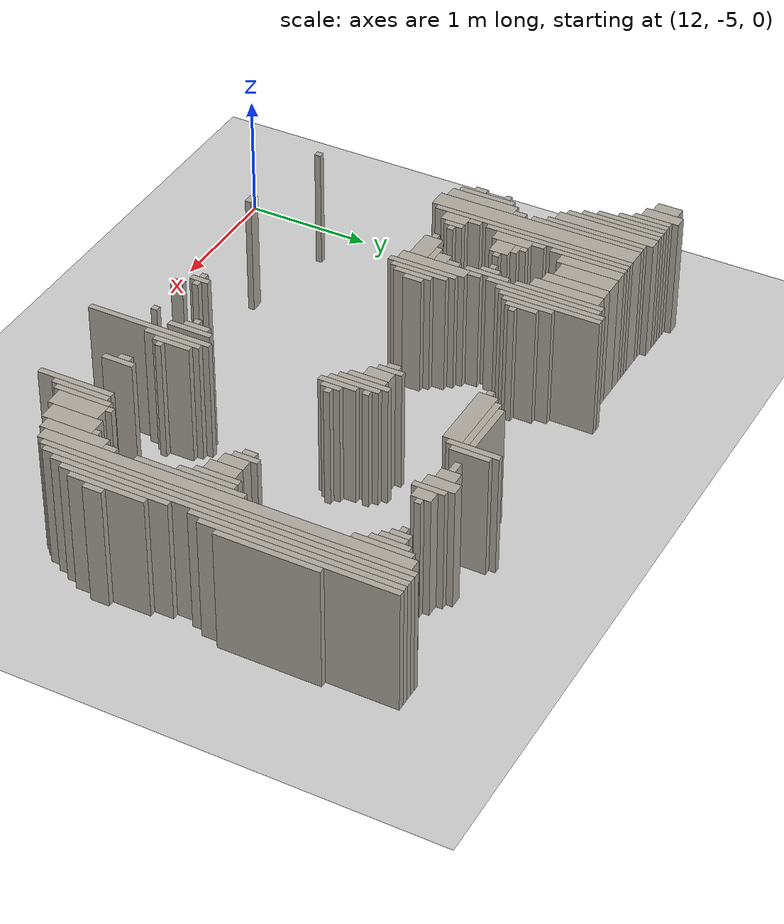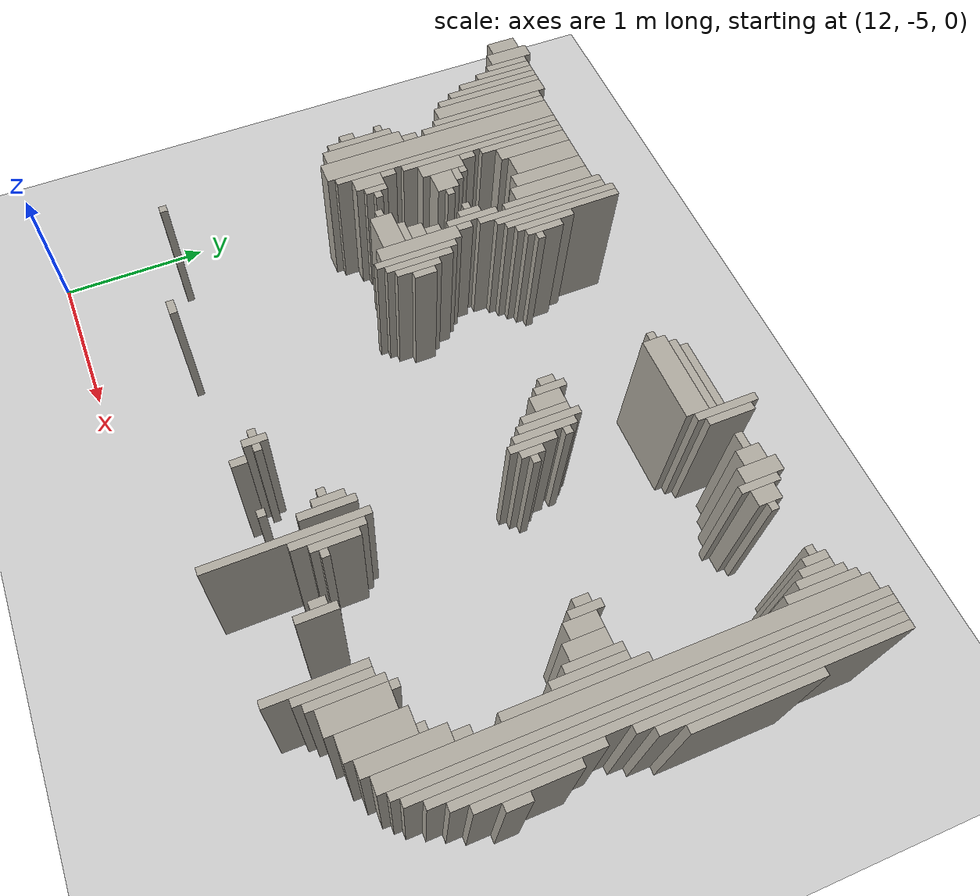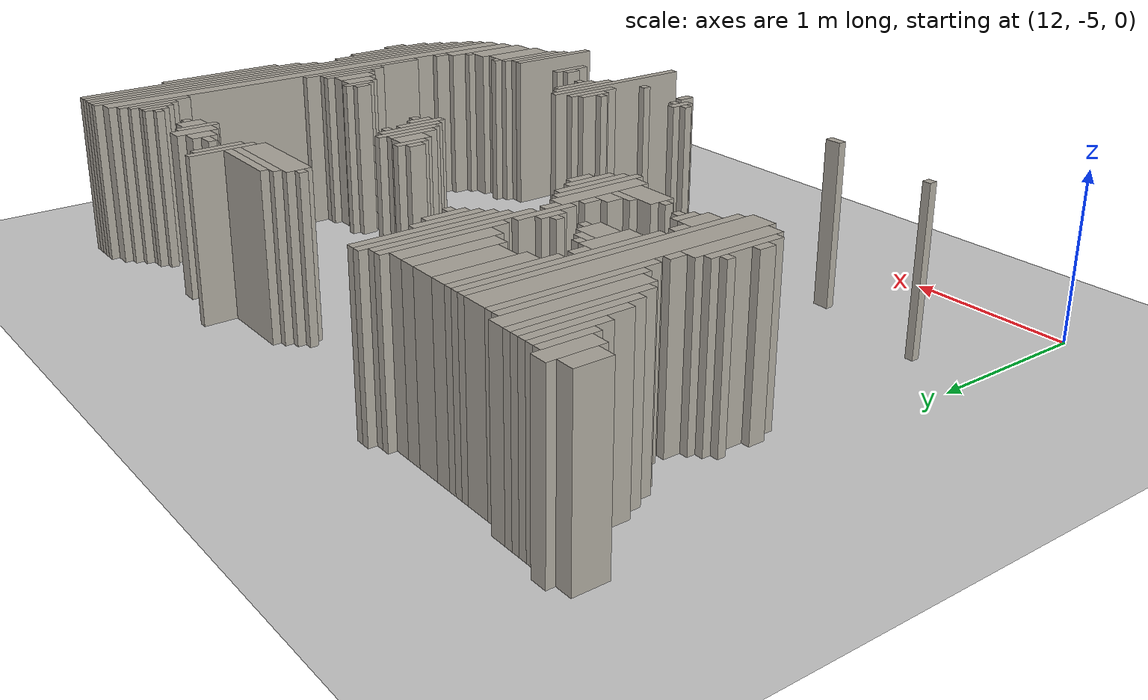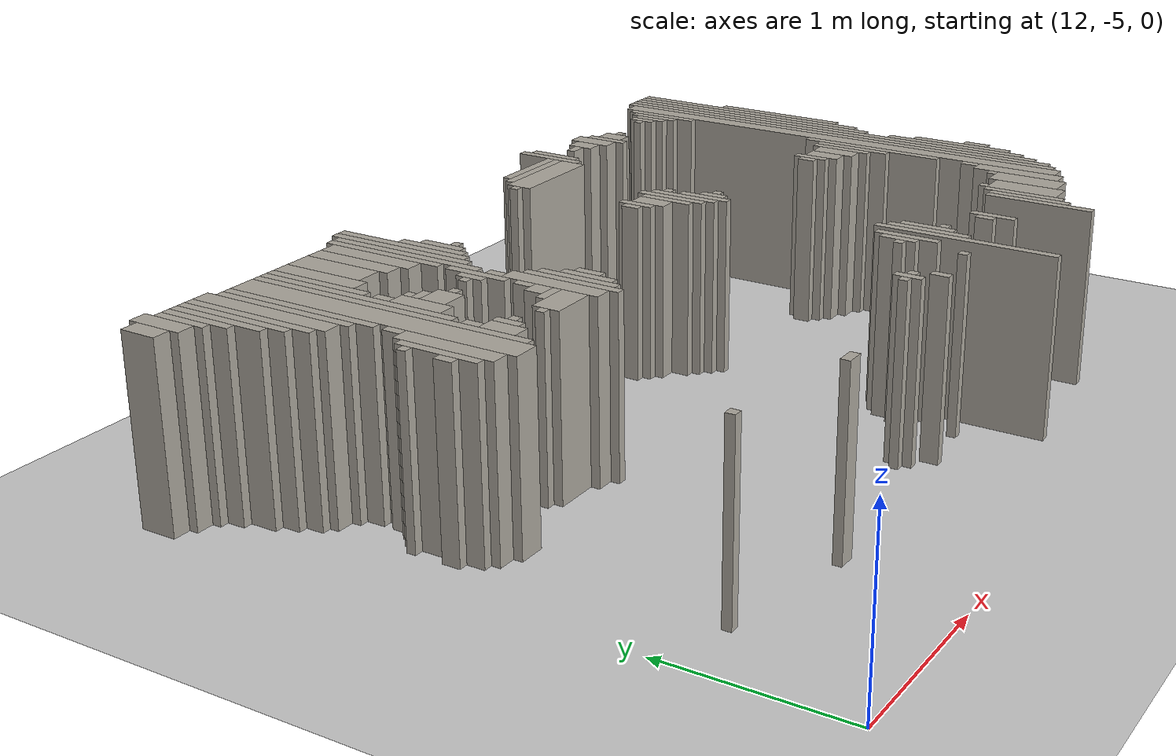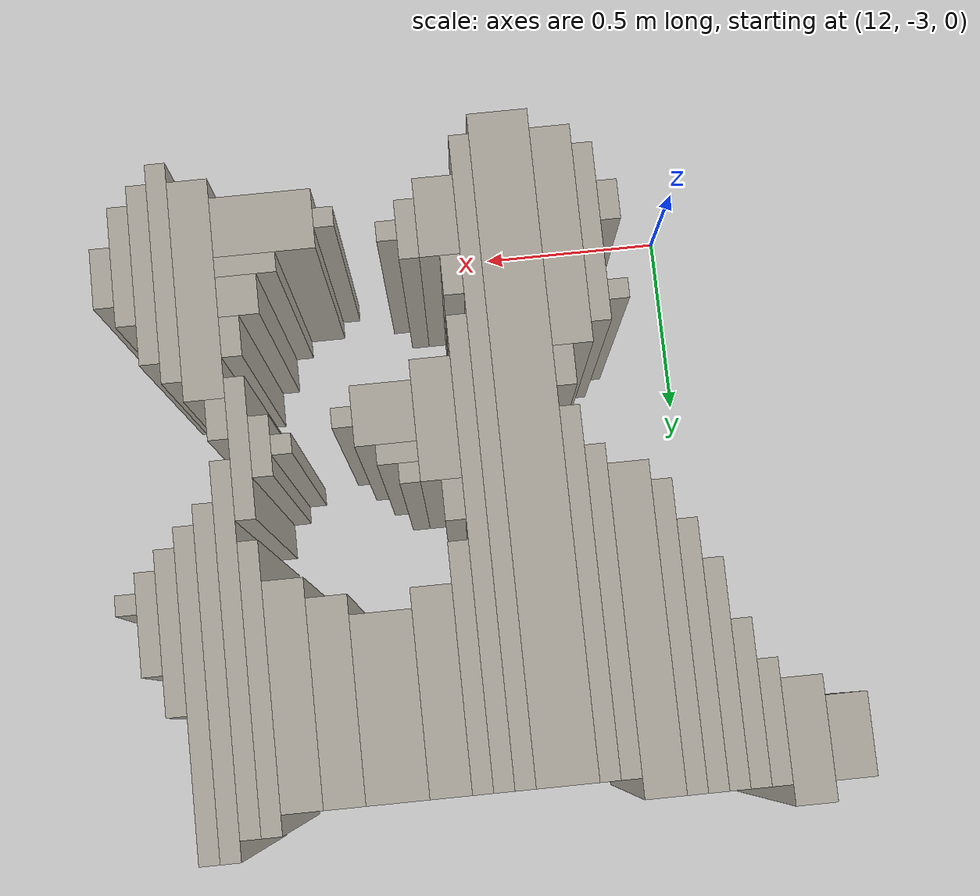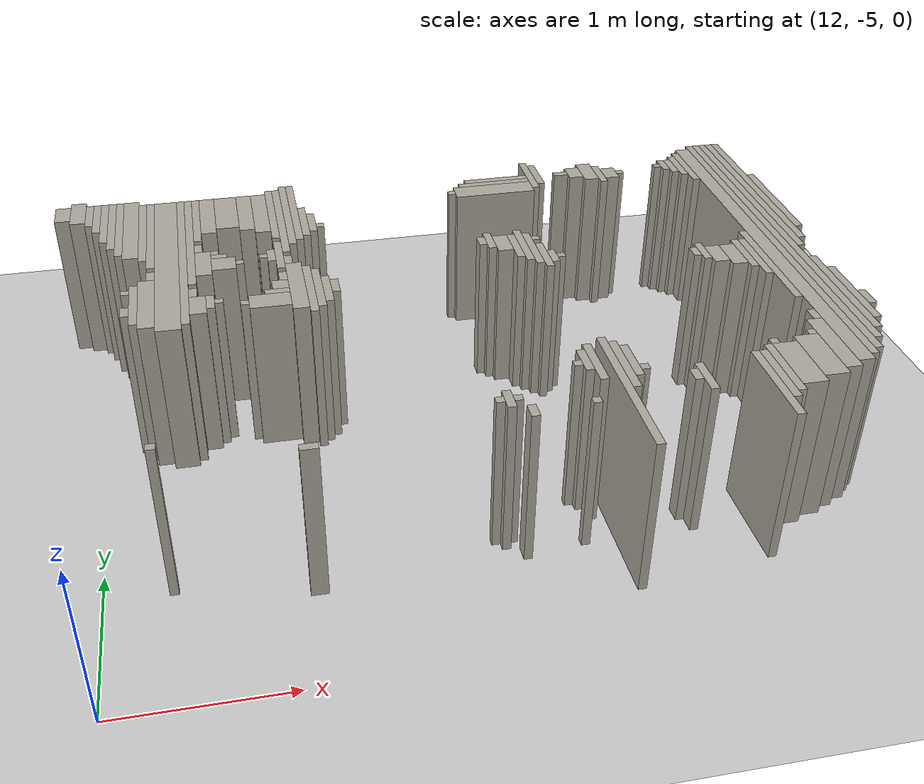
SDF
<sdf version="1.6">
 <world name="fr079_office">
  <include><uri>model://sun</uri></include>
  <include><uri>model://ground_plane</uri></include>
  <model name="fr079_office_walls">
   <static>true</static>
   <link name="w0784">
    <pose>14.877 -4.156 0.500 0 0 0</pose>
    <collision name="c"><geometry><box><size>0.050 1.000 1.000</size></box></geometry></collision>
    <visual name="v">
     <geometry><box><size>0.050 1.000 1.000</size></box></geometry>
     <material><ambient>0.68 0.66 0.62 1</ambient><diffuse>0.68 0.66 0.62 1</diffuse></material>
    </visual>
   </link>
   <link name="w0815">
    <pose>15.677 -4.256 0.500 0 0 0</pose>
    <collision name="c"><geometry><box><size>0.050 0.600 1.000</size></box></geometry></collision>
    <visual name="v">
     <geometry><box><size>0.050 0.600 1.000</size></box></geometry>
     <material><ambient>0.68 0.66 0.62 1</ambient><diffuse>0.68 0.66 0.62 1</diffuse></material>
    </visual>
   </link>
   <link name="w0857">
    <pose>15.727 -4.181 0.500 0 0 0</pose>
    <collision name="c"><geometry><box><size>0.050 0.450 1.000</size></box></geometry></collision>
    <visual name="v">
     <geometry><box><size>0.050 0.450 1.000</size></box></geometry>
     <material><ambient>0.68 0.66 0.62 1</ambient><diffuse>0.68 0.66 0.62 1</diffuse></material>
    </visual>
   </link>
   <link name="w0870">
    <pose>13.152 -4.331 0.500 0 0 0</pose>
    <collision name="c"><geometry><box><size>0.100 0.050 1.000</size></box></geometry></collision>
    <visual name="v">
     <geometry><box><size>0.100 0.050 1.000</size></box></geometry>
     <material><ambient>0.68 0.66 0.62 1</ambient><diffuse>0.68 0.66 0.62 1</diffuse></material>
    </visual>
   </link>
   <link name="w0871">
    <pose>15.777 -4.131 0.500 0 0 0</pose>
    <collision name="c"><geometry><box><size>0.050 0.450 1.000</size></box></geometry></collision>
    <visual name="v">
     <geometry><box><size>0.050 0.450 1.000</size></box></geometry>
     <material><ambient>0.68 0.66 0.62 1</ambient><diffuse>0.68 0.66 0.62 1</diffuse></material>
    </visual>
   </link>
   <link name="w0882">
    <pose>14.327 -4.256 0.500 0 0 0</pose>
    <collision name="c"><geometry><box><size>0.050 0.100 1.000</size></box></geometry></collision>
    <visual name="v">
     <geometry><box><size>0.050 0.100 1.000</size></box></geometry>
     <material><ambient>0.68 0.66 0.62 1</ambient><diffuse>0.68 0.66 0.62 1</diffuse></material>
    </visual>
   </link>
   <link name="w0883">
    <pose>15.877 -4.106 0.500 0 0 0</pose>
    <collision name="c"><geometry><box><size>0.150 0.400 1.000</size></box></geometry></collision>
    <visual name="v">
     <geometry><box><size>0.150 0.400 1.000</size></box></geometry>
     <material><ambient>0.68 0.66 0.62 1</ambient><diffuse>0.68 0.66 0.62 1</diffuse></material>
    </visual>
   </link>
   <link name="w0898">
    <pose>14.677 -4.231 0.500 0 0 0</pose>
    <collision name="c"><geometry><box><size>0.050 0.050 1.000</size></box></geometry></collision>
    <visual name="v">
     <geometry><box><size>0.050 0.050 1.000</size></box></geometry>
     <material><ambient>0.68 0.66 0.62 1</ambient><diffuse>0.68 0.66 0.62 1</diffuse></material>
    </visual>
   </link>
   <link name="w0899">
    <pose>15.327 -4.131 0.500 0 0 0</pose>
    <collision name="c"><geometry><box><size>0.050 0.250 1.000</size></box></geometry></collision>
    <visual name="v">
     <geometry><box><size>0.050 0.250 1.000</size></box></geometry>
     <material><ambient>0.68 0.66 0.62 1</ambient><diffuse>0.68 0.66 0.62 1</diffuse></material>
    </visual>
   </link>
   <link name="w0900">
    <pose>16.027 -4.056 0.500 0 0 0</pose>
    <collision name="c"><geometry><box><size>0.150 0.400 1.000</size></box></geometry></collision>
    <visual name="v">
     <geometry><box><size>0.150 0.400 1.000</size></box></geometry>
     <material><ambient>0.68 0.66 0.62 1</ambient><diffuse>0.68 0.66 0.62 1</diffuse></material>
    </visual>
   </link>
   <link name="w0918">
    <pose>12.377 -4.181 0.500 0 0 0</pose>
    <collision name="c"><geometry><box><size>0.050 0.050 1.000</size></box></geometry></collision>
    <visual name="v">
     <geometry><box><size>0.050 0.050 1.000</size></box></geometry>
     <material><ambient>0.68 0.66 0.62 1</ambient><diffuse>0.68 0.66 0.62 1</diffuse></material>
    </visual>
   </link>
   <link name="w0919">
    <pose>14.227 -4.131 0.500 0 0 0</pose>
    <collision name="c"><geometry><box><size>0.050 0.150 1.000</size></box></geometry></collision>
    <visual name="v">
     <geometry><box><size>0.050 0.150 1.000</size></box></geometry>
     <material><ambient>0.68 0.66 0.62 1</ambient><diffuse>0.68 0.66 0.62 1</diffuse></material>
    </visual>
   </link>
   <link name="w0920">
    <pose>16.152 -3.956 0.500 0 0 0</pose>
    <collision name="c"><geometry><box><size>0.100 0.500 1.000</size></box></geometry></collision>
    <visual name="v">
     <geometry><box><size>0.100 0.500 1.000</size></box></geometry>
     <material><ambient>0.68 0.66 0.62 1</ambient><diffuse>0.68 0.66 0.62 1</diffuse></material>
    </visual>
   </link>
   <link name="w0935">
    <pose>14.177 -4.131 0.500 0 0 0</pose>
    <collision name="c"><geometry><box><size>0.050 0.050 1.000</size></box></geometry></collision>
    <visual name="v">
     <geometry><box><size>0.050 0.050 1.000</size></box></geometry>
     <material><ambient>0.68 0.66 0.62 1</ambient><diffuse>0.68 0.66 0.62 1</diffuse></material>
    </visual>
   </link>
   <link name="w0936">
    <pose>14.277 -4.131 0.500 0 0 0</pose>
    <collision name="c"><geometry><box><size>0.050 0.050 1.000</size></box></geometry></collision>
    <visual name="v">
     <geometry><box><size>0.050 0.050 1.000</size></box></geometry>
     <material><ambient>0.68 0.66 0.62 1</ambient><diffuse>0.68 0.66 0.62 1</diffuse></material>
    </visual>
   </link>
   <link name="w0937">
    <pose>14.927 -3.931 0.500 0 0 0</pose>
    <collision name="c"><geometry><box><size>0.050 0.450 1.000</size></box></geometry></collision>
    <visual name="v">
     <geometry><box><size>0.050 0.450 1.000</size></box></geometry>
     <material><ambient>0.68 0.66 0.62 1</ambient><diffuse>0.68 0.66 0.62 1</diffuse></material>
    </visual>
   </link>
   <link name="w0938">
    <pose>15.277 -4.106 0.500 0 0 0</pose>
    <collision name="c"><geometry><box><size>0.050 0.100 1.000</size></box></geometry></collision>
    <visual name="v">
     <geometry><box><size>0.050 0.100 1.000</size></box></geometry>
     <material><ambient>0.68 0.66 0.62 1</ambient><diffuse>0.68 0.66 0.62 1</diffuse></material>
    </visual>
   </link>
   <link name="w0939">
    <pose>16.252 -2.731 0.500 0 0 0</pose>
    <collision name="c"><geometry><box><size>0.100 2.850 1.000</size></box></geometry></collision>
    <visual name="v">
     <geometry><box><size>0.100 2.850 1.000</size></box></geometry>
     <material><ambient>0.68 0.66 0.62 1</ambient><diffuse>0.68 0.66 0.62 1</diffuse></material>
    </visual>
   </link>
   <link name="w0949">
    <pose>16.327 -2.681 0.500 0 0 0</pose>
    <collision name="c"><geometry><box><size>0.050 2.850 1.000</size></box></geometry></collision>
    <visual name="v">
     <geometry><box><size>0.050 2.850 1.000</size></box></geometry>
     <material><ambient>0.68 0.66 0.62 1</ambient><diffuse>0.68 0.66 0.62 1</diffuse></material>
    </visual>
   </link>
   <link name="w0959">
    <pose>14.777 -3.881 0.500 0 0 0</pose>
    <collision name="c"><geometry><box><size>0.050 0.350 1.000</size></box></geometry></collision>
    <visual name="v">
     <geometry><box><size>0.050 0.350 1.000</size></box></geometry>
     <material><ambient>0.68 0.66 0.62 1</ambient><diffuse>0.68 0.66 0.62 1</diffuse></material>
    </visual>
   </link>
   <link name="w0960">
    <pose>14.977 -3.906 0.500 0 0 0</pose>
    <collision name="c"><geometry><box><size>0.050 0.300 1.000</size></box></geometry></collision>
    <visual name="v">
     <geometry><box><size>0.050 0.300 1.000</size></box></geometry>
     <material><ambient>0.68 0.66 0.62 1</ambient><diffuse>0.68 0.66 0.62 1</diffuse></material>
    </visual>
   </link>
   <link name="w0961">
    <pose>16.377 -2.656 0.500 0 0 0</pose>
    <collision name="c"><geometry><box><size>0.050 2.800 1.000</size></box></geometry></collision>
    <visual name="v">
     <geometry><box><size>0.050 2.800 1.000</size></box></geometry>
     <material><ambient>0.68 0.66 0.62 1</ambient><diffuse>0.68 0.66 0.62 1</diffuse></material>
    </visual>
   </link>
   <link name="w0974">
    <pose>15.027 -3.981 0.500 0 0 0</pose>
    <collision name="c"><geometry><box><size>0.050 0.050 1.000</size></box></geometry></collision>
    <visual name="v">
     <geometry><box><size>0.050 0.050 1.000</size></box></geometry>
     <material><ambient>0.68 0.66 0.62 1</ambient><diffuse>0.68 0.66 0.62 1</diffuse></material>
    </visual>
   </link>
   <link name="w0987">
    <pose>14.727 -3.856 0.500 0 0 0</pose>
    <collision name="c"><geometry><box><size>0.050 0.200 1.000</size></box></geometry></collision>
    <visual name="v">
     <geometry><box><size>0.050 0.200 1.000</size></box></geometry>
     <material><ambient>0.68 0.66 0.62 1</ambient><diffuse>0.68 0.66 0.62 1</diffuse></material>
    </visual>
   </link>
   <link name="w0988">
    <pose>16.427 -2.606 0.500 0 0 0</pose>
    <collision name="c"><geometry><box><size>0.050 2.700 1.000</size></box></geometry></collision>
    <visual name="v">
     <geometry><box><size>0.050 2.700 1.000</size></box></geometry>
     <material><ambient>0.68 0.66 0.62 1</ambient><diffuse>0.68 0.66 0.62 1</diffuse></material>
    </visual>
   </link>
   <link name="w1001">
    <pose>14.677 -3.881 0.500 0 0 0</pose>
    <collision name="c"><geometry><box><size>0.050 0.050 1.000</size></box></geometry></collision>
    <visual name="v">
     <geometry><box><size>0.050 0.050 1.000</size></box></geometry>
     <material><ambient>0.68 0.66 0.62 1</ambient><diffuse>0.68 0.66 0.62 1</diffuse></material>
    </visual>
   </link>
   <link name="w1002">
    <pose>15.827 -3.881 0.500 0 0 0</pose>
    <collision name="c"><geometry><box><size>0.050 0.050 1.000</size></box></geometry></collision>
    <visual name="v">
     <geometry><box><size>0.050 0.050 1.000</size></box></geometry>
     <material><ambient>0.68 0.66 0.62 1</ambient><diffuse>0.68 0.66 0.62 1</diffuse></material>
    </visual>
   </link>
   <link name="w1012">
    <pose>16.077 -3.831 0.500 0 0 0</pose>
    <collision name="c"><geometry><box><size>0.050 0.050 1.000</size></box></geometry></collision>
    <visual name="v">
     <geometry><box><size>0.050 0.050 1.000</size></box></geometry>
     <material><ambient>0.68 0.66 0.62 1</ambient><diffuse>0.68 0.66 0.62 1</diffuse></material>
    </visual>
   </link>
   <link name="w1013">
    <pose>16.477 -3.431 0.500 0 0 0</pose>
    <collision name="c"><geometry><box><size>0.050 0.850 1.000</size></box></geometry></collision>
    <visual name="v">
     <geometry><box><size>0.050 0.850 1.000</size></box></geometry>
     <material><ambient>0.68 0.66 0.62 1</ambient><diffuse>0.68 0.66 0.62 1</diffuse></material>
    </visual>
   </link>
   <link name="w1038">
    <pose>16.527 -3.456 0.500 0 0 0</pose>
    <collision name="c"><geometry><box><size>0.050 0.600 1.000</size></box></geometry></collision>
    <visual name="v">
     <geometry><box><size>0.050 0.600 1.000</size></box></geometry>
     <material><ambient>0.68 0.66 0.62 1</ambient><diffuse>0.68 0.66 0.62 1</diffuse></material>
    </visual>
   </link>
   <link name="w1051">
    <pose>16.177 -3.656 0.500 0 0 0</pose>
    <collision name="c"><geometry><box><size>0.050 0.100 1.000</size></box></geometry></collision>
    <visual name="v">
     <geometry><box><size>0.050 0.100 1.000</size></box></geometry>
     <material><ambient>0.68 0.66 0.62 1</ambient><diffuse>0.68 0.66 0.62 1</diffuse></material>
    </visual>
   </link>
   <link name="w1070">
    <pose>16.577 -3.531 0.500 0 0 0</pose>
    <collision name="c"><geometry><box><size>0.050 0.150 1.000</size></box></geometry></collision>
    <visual name="v">
     <geometry><box><size>0.050 0.150 1.000</size></box></geometry>
     <material><ambient>0.68 0.66 0.62 1</ambient><diffuse>0.68 0.66 0.62 1</diffuse></material>
    </visual>
   </link>
   <link name="w1092">
    <pose>16.177 -3.031 0.500 0 0 0</pose>
    <collision name="c"><geometry><box><size>0.050 0.850 1.000</size></box></geometry></collision>
    <visual name="v">
     <geometry><box><size>0.050 0.850 1.000</size></box></geometry>
     <material><ambient>0.68 0.66 0.62 1</ambient><diffuse>0.68 0.66 0.62 1</diffuse></material>
    </visual>
   </link>
   <link name="w1129">
    <pose>16.127 -2.931 0.500 0 0 0</pose>
    <collision name="c"><geometry><box><size>0.050 0.450 1.000</size></box></geometry></collision>
    <visual name="v">
     <geometry><box><size>0.050 0.450 1.000</size></box></geometry>
     <material><ambient>0.68 0.66 0.62 1</ambient><diffuse>0.68 0.66 0.62 1</diffuse></material>
    </visual>
   </link>
   <link name="w1138">
    <pose>12.477 -2.281 0.500 0 0 0</pose>
    <collision name="c"><geometry><box><size>0.150 1.650 1.000</size></box></geometry></collision>
    <visual name="v">
     <geometry><box><size>0.150 1.650 1.000</size></box></geometry>
     <material><ambient>0.68 0.66 0.62 1</ambient><diffuse>0.68 0.66 0.62 1</diffuse></material>
    </visual>
   </link>
   <link name="w1145">
    <pose>12.352 -2.781 0.500 0 0 0</pose>
    <collision name="c"><geometry><box><size>0.100 0.550 1.000</size></box></geometry></collision>
    <visual name="v">
     <geometry><box><size>0.100 0.550 1.000</size></box></geometry>
     <material><ambient>0.68 0.66 0.62 1</ambient><diffuse>0.68 0.66 0.62 1</diffuse></material>
    </visual>
   </link>
   <link name="w1146">
    <pose>12.577 -2.256 0.500 0 0 0</pose>
    <collision name="c"><geometry><box><size>0.050 1.600 1.000</size></box></geometry></collision>
    <visual name="v">
     <geometry><box><size>0.050 1.600 1.000</size></box></geometry>
     <material><ambient>0.68 0.66 0.62 1</ambient><diffuse>0.68 0.66 0.62 1</diffuse></material>
    </visual>
   </link>
   <link name="w1147">
    <pose>13.327 -2.781 0.500 0 0 0</pose>
    <collision name="c"><geometry><box><size>0.050 0.550 1.000</size></box></geometry></collision>
    <visual name="v">
     <geometry><box><size>0.050 0.550 1.000</size></box></geometry>
     <material><ambient>0.68 0.66 0.62 1</ambient><diffuse>0.68 0.66 0.62 1</diffuse></material>
    </visual>
   </link>
   <link name="w1148">
    <pose>16.077 -2.881 0.500 0 0 0</pose>
    <collision name="c"><geometry><box><size>0.050 0.350 1.000</size></box></geometry></collision>
    <visual name="v">
     <geometry><box><size>0.050 0.350 1.000</size></box></geometry>
     <material><ambient>0.68 0.66 0.62 1</ambient><diffuse>0.68 0.66 0.62 1</diffuse></material>
    </visual>
   </link>
   <link name="w1155">
    <pose>12.277 -2.781 0.500 0 0 0</pose>
    <collision name="c"><geometry><box><size>0.050 0.450 1.000</size></box></geometry></collision>
    <visual name="v">
     <geometry><box><size>0.050 0.450 1.000</size></box></geometry>
     <material><ambient>0.68 0.66 0.62 1</ambient><diffuse>0.68 0.66 0.62 1</diffuse></material>
    </visual>
   </link>
   <link name="w1156">
    <pose>13.252 -2.731 0.500 0 0 0</pose>
    <collision name="c"><geometry><box><size>0.100 0.550 1.000</size></box></geometry></collision>
    <visual name="v">
     <geometry><box><size>0.100 0.550 1.000</size></box></geometry>
     <material><ambient>0.68 0.66 0.62 1</ambient><diffuse>0.68 0.66 0.62 1</diffuse></material>
    </visual>
   </link>
   <link name="w1157">
    <pose>13.377 -2.781 0.500 0 0 0</pose>
    <collision name="c"><geometry><box><size>0.050 0.450 1.000</size></box></geometry></collision>
    <visual name="v">
     <geometry><box><size>0.050 0.450 1.000</size></box></geometry>
     <material><ambient>0.68 0.66 0.62 1</ambient><diffuse>0.68 0.66 0.62 1</diffuse></material>
    </visual>
   </link>
   <link name="w1158">
    <pose>16.002 -2.881 0.500 0 0 0</pose>
    <collision name="c"><geometry><box><size>0.100 0.250 1.000</size></box></geometry></collision>
    <visual name="v">
     <geometry><box><size>0.100 0.250 1.000</size></box></geometry>
     <material><ambient>0.68 0.66 0.62 1</ambient><diffuse>0.68 0.66 0.62 1</diffuse></material>
    </visual>
   </link>
   <link name="w1168">
    <pose>12.652 -2.856 0.500 0 0 0</pose>
    <collision name="c"><geometry><box><size>0.100 0.200 1.000</size></box></geometry></collision>
    <visual name="v">
     <geometry><box><size>0.100 0.200 1.000</size></box></geometry>
     <material><ambient>0.68 0.66 0.62 1</ambient><diffuse>0.68 0.66 0.62 1</diffuse></material>
    </visual>
   </link>
   <link name="w1169">
    <pose>13.077 -2.881 0.500 0 0 0</pose>
    <collision name="c"><geometry><box><size>0.250 0.150 1.000</size></box></geometry></collision>
    <visual name="v">
     <geometry><box><size>0.250 0.150 1.000</size></box></geometry>
     <material><ambient>0.68 0.66 0.62 1</ambient><diffuse>0.68 0.66 0.62 1</diffuse></material>
    </visual>
   </link>
   <link name="w1170">
    <pose>13.427 -2.806 0.500 0 0 0</pose>
    <collision name="c"><geometry><box><size>0.050 0.300 1.000</size></box></geometry></collision>
    <visual name="v">
     <geometry><box><size>0.050 0.300 1.000</size></box></geometry>
     <material><ambient>0.68 0.66 0.62 1</ambient><diffuse>0.68 0.66 0.62 1</diffuse></material>
    </visual>
   </link>
   <link name="w1171">
    <pose>15.902 -2.856 0.500 0 0 0</pose>
    <collision name="c"><geometry><box><size>0.100 0.200 1.000</size></box></geometry></collision>
    <visual name="v">
     <geometry><box><size>0.100 0.200 1.000</size></box></geometry>
     <material><ambient>0.68 0.66 0.62 1</ambient><diffuse>0.68 0.66 0.62 1</diffuse></material>
    </visual>
   </link>
   <link name="w1180">
    <pose>12.227 -2.856 0.500 0 0 0</pose>
    <collision name="c"><geometry><box><size>0.050 0.100 1.000</size></box></geometry></collision>
    <visual name="v">
     <geometry><box><size>0.050 0.100 1.000</size></box></geometry>
     <material><ambient>0.68 0.66 0.62 1</ambient><diffuse>0.68 0.66 0.62 1</diffuse></material>
    </visual>
   </link>
   <link name="w1181">
    <pose>12.727 -2.831 0.500 0 0 0</pose>
    <collision name="c"><geometry><box><size>0.050 0.150 1.000</size></box></geometry></collision>
    <visual name="v">
     <geometry><box><size>0.050 0.150 1.000</size></box></geometry>
     <material><ambient>0.68 0.66 0.62 1</ambient><diffuse>0.68 0.66 0.62 1</diffuse></material>
    </visual>
   </link>
   <link name="w1182">
    <pose>12.927 -2.881 0.500 0 0 0</pose>
    <collision name="c"><geometry><box><size>0.050 0.050 1.000</size></box></geometry></collision>
    <visual name="v">
     <geometry><box><size>0.050 0.050 1.000</size></box></geometry>
     <material><ambient>0.68 0.66 0.62 1</ambient><diffuse>0.68 0.66 0.62 1</diffuse></material>
    </visual>
   </link>
   <link name="w1183">
    <pose>15.827 -2.806 0.500 0 0 0</pose>
    <collision name="c"><geometry><box><size>0.050 0.200 1.000</size></box></geometry></collision>
    <visual name="v">
     <geometry><box><size>0.050 0.200 1.000</size></box></geometry>
     <material><ambient>0.68 0.66 0.62 1</ambient><diffuse>0.68 0.66 0.62 1</diffuse></material>
    </visual>
   </link>
   <link name="w1197">
    <pose>12.777 -2.831 0.500 0 0 0</pose>
    <collision name="c"><geometry><box><size>0.050 0.050 1.000</size></box></geometry></collision>
    <visual name="v">
     <geometry><box><size>0.050 0.050 1.000</size></box></geometry>
     <material><ambient>0.68 0.66 0.62 1</ambient><diffuse>0.68 0.66 0.62 1</diffuse></material>
    </visual>
   </link>
   <link name="w1198">
    <pose>13.477 -2.781 0.500 0 0 0</pose>
    <collision name="c"><geometry><box><size>0.050 0.150 1.000</size></box></geometry></collision>
    <visual name="v">
     <geometry><box><size>0.050 0.150 1.000</size></box></geometry>
     <material><ambient>0.68 0.66 0.62 1</ambient><diffuse>0.68 0.66 0.62 1</diffuse></material>
    </visual>
   </link>
   <link name="w1199">
    <pose>15.777 -2.806 0.500 0 0 0</pose>
    <collision name="c"><geometry><box><size>0.050 0.100 1.000</size></box></geometry></collision>
    <visual name="v">
     <geometry><box><size>0.050 0.100 1.000</size></box></geometry>
     <material><ambient>0.68 0.66 0.62 1</ambient><diffuse>0.68 0.66 0.62 1</diffuse></material>
    </visual>
   </link>
   <link name="w1200">
    <pose>16.477 -2.056 0.500 0 0 0</pose>
    <collision name="c"><geometry><box><size>0.050 1.600 1.000</size></box></geometry></collision>
    <visual name="v">
     <geometry><box><size>0.050 1.600 1.000</size></box></geometry>
     <material><ambient>0.68 0.66 0.62 1</ambient><diffuse>0.68 0.66 0.62 1</diffuse></material>
    </visual>
   </link>
   <link name="w1206">
    <pose>13.127 -2.781 0.500 0 0 0</pose>
    <collision name="c"><geometry><box><size>0.150 0.050 1.000</size></box></geometry></collision>
    <visual name="v">
     <geometry><box><size>0.150 0.050 1.000</size></box></geometry>
     <material><ambient>0.68 0.66 0.62 1</ambient><diffuse>0.68 0.66 0.62 1</diffuse></material>
    </visual>
   </link>
   <link name="w1207">
    <pose>14.827 -2.656 0.500 0 0 0</pose>
    <collision name="c"><geometry><box><size>0.050 0.300 1.000</size></box></geometry></collision>
    <visual name="v">
     <geometry><box><size>0.050 0.300 1.000</size></box></geometry>
     <material><ambient>0.68 0.66 0.62 1</ambient><diffuse>0.68 0.66 0.62 1</diffuse></material>
    </visual>
   </link>
   <link name="w1213">
    <pose>12.627 -2.706 0.500 0 0 0</pose>
    <collision name="c"><geometry><box><size>0.050 0.100 1.000</size></box></geometry></collision>
    <visual name="v">
     <geometry><box><size>0.050 0.100 1.000</size></box></geometry>
     <material><ambient>0.68 0.66 0.62 1</ambient><diffuse>0.68 0.66 0.62 1</diffuse></material>
    </visual>
   </link>
   <link name="w1214">
    <pose>13.152 -2.706 0.500 0 0 0</pose>
    <collision name="c"><geometry><box><size>0.100 0.100 1.000</size></box></geometry></collision>
    <visual name="v">
     <geometry><box><size>0.100 0.100 1.000</size></box></geometry>
     <material><ambient>0.68 0.66 0.62 1</ambient><diffuse>0.68 0.66 0.62 1</diffuse></material>
    </visual>
   </link>
   <link name="w1215">
    <pose>14.777 -2.556 0.500 0 0 0</pose>
    <collision name="c"><geometry><box><size>0.050 0.400 1.000</size></box></geometry></collision>
    <visual name="v">
     <geometry><box><size>0.050 0.400 1.000</size></box></geometry>
     <material><ambient>0.68 0.66 0.62 1</ambient><diffuse>0.68 0.66 0.62 1</diffuse></material>
    </visual>
   </link>
   <link name="w1216">
    <pose>14.877 -2.681 0.500 0 0 0</pose>
    <collision name="c"><geometry><box><size>0.050 0.150 1.000</size></box></geometry></collision>
    <visual name="v">
     <geometry><box><size>0.050 0.150 1.000</size></box></geometry>
     <material><ambient>0.68 0.66 0.62 1</ambient><diffuse>0.68 0.66 0.62 1</diffuse></material>
    </visual>
   </link>
   <link name="w1217">
    <pose>16.527 -2.006 0.500 0 0 0</pose>
    <collision name="c"><geometry><box><size>0.050 1.500 1.000</size></box></geometry></collision>
    <visual name="v">
     <geometry><box><size>0.050 1.500 1.000</size></box></geometry>
     <material><ambient>0.68 0.66 0.62 1</ambient><diffuse>0.68 0.66 0.62 1</diffuse></material>
    </visual>
   </link>
   <link name="w1228">
    <pose>14.727 -2.506 0.500 0 0 0</pose>
    <collision name="c"><geometry><box><size>0.050 0.400 1.000</size></box></geometry></collision>
    <visual name="v">
     <geometry><box><size>0.050 0.400 1.000</size></box></geometry>
     <material><ambient>0.68 0.66 0.62 1</ambient><diffuse>0.68 0.66 0.62 1</diffuse></material>
    </visual>
   </link>
   <link name="w1229">
    <pose>14.927 -2.681 0.500 0 0 0</pose>
    <collision name="c"><geometry><box><size>0.050 0.050 1.000</size></box></geometry></collision>
    <visual name="v">
     <geometry><box><size>0.050 0.050 1.000</size></box></geometry>
     <material><ambient>0.68 0.66 0.62 1</ambient><diffuse>0.68 0.66 0.62 1</diffuse></material>
    </visual>
   </link>
   <link name="w1241">
    <pose>12.227 -2.631 0.500 0 0 0</pose>
    <collision name="c"><geometry><box><size>0.050 0.050 1.000</size></box></geometry></collision>
    <visual name="v">
     <geometry><box><size>0.050 0.050 1.000</size></box></geometry>
     <material><ambient>0.68 0.66 0.62 1</ambient><diffuse>0.68 0.66 0.62 1</diffuse></material>
    </visual>
   </link>
   <link name="w1242">
    <pose>13.177 -2.606 0.500 0 0 0</pose>
    <collision name="c"><geometry><box><size>0.050 0.100 1.000</size></box></geometry></collision>
    <visual name="v">
     <geometry><box><size>0.050 0.100 1.000</size></box></geometry>
     <material><ambient>0.68 0.66 0.62 1</ambient><diffuse>0.68 0.66 0.62 1</diffuse></material>
    </visual>
   </link>
   <link name="w1243">
    <pose>14.677 -2.506 0.500 0 0 0</pose>
    <collision name="c"><geometry><box><size>0.050 0.300 1.000</size></box></geometry></collision>
    <visual name="v">
     <geometry><box><size>0.050 0.300 1.000</size></box></geometry>
     <material><ambient>0.68 0.66 0.62 1</ambient><diffuse>0.68 0.66 0.62 1</diffuse></material>
    </visual>
   </link>
   <link name="w1258">
    <pose>12.627 -2.031 0.500 0 0 0</pose>
    <collision name="c"><geometry><box><size>0.050 1.150 1.000</size></box></geometry></collision>
    <visual name="v">
     <geometry><box><size>0.050 1.150 1.000</size></box></geometry>
     <material><ambient>0.68 0.66 0.62 1</ambient><diffuse>0.68 0.66 0.62 1</diffuse></material>
    </visual>
   </link>
   <link name="w1259">
    <pose>16.577 -2.206 0.500 0 0 0</pose>
    <collision name="c"><geometry><box><size>0.050 0.800 1.000</size></box></geometry></collision>
    <visual name="v">
     <geometry><box><size>0.050 0.800 1.000</size></box></geometry>
     <material><ambient>0.68 0.66 0.62 1</ambient><diffuse>0.68 0.66 0.62 1</diffuse></material>
    </visual>
   </link>
   <link name="w1276">
    <pose>14.602 -2.456 0.500 0 0 0</pose>
    <collision name="c"><geometry><box><size>0.100 0.200 1.000</size></box></geometry></collision>
    <visual name="v">
     <geometry><box><size>0.100 0.200 1.000</size></box></geometry>
     <material><ambient>0.68 0.66 0.62 1</ambient><diffuse>0.68 0.66 0.62 1</diffuse></material>
    </visual>
   </link>
   <link name="w1290">
    <pose>12.377 -2.456 0.500 0 0 0</pose>
    <collision name="c"><geometry><box><size>0.050 0.100 1.000</size></box></geometry></collision>
    <visual name="v">
     <geometry><box><size>0.050 0.100 1.000</size></box></geometry>
     <material><ambient>0.68 0.66 0.62 1</ambient><diffuse>0.68 0.66 0.62 1</diffuse></material>
    </visual>
   </link>
   <link name="w1291">
    <pose>12.702 -2.356 0.500 0 0 0</pose>
    <collision name="c"><geometry><box><size>0.100 0.300 1.000</size></box></geometry></collision>
    <visual name="v">
     <geometry><box><size>0.100 0.300 1.000</size></box></geometry>
     <material><ambient>0.68 0.66 0.62 1</ambient><diffuse>0.68 0.66 0.62 1</diffuse></material>
    </visual>
   </link>
   <link name="w1292">
    <pose>13.177 -2.331 0.500 0 0 0</pose>
    <collision name="c"><geometry><box><size>0.050 0.350 1.000</size></box></geometry></collision>
    <visual name="v">
     <geometry><box><size>0.050 0.350 1.000</size></box></geometry>
     <material><ambient>0.68 0.66 0.62 1</ambient><diffuse>0.68 0.66 0.62 1</diffuse></material>
    </visual>
   </link>
   <link name="w1293">
    <pose>14.527 -2.406 0.500 0 0 0</pose>
    <collision name="c"><geometry><box><size>0.050 0.200 1.000</size></box></geometry></collision>
    <visual name="v">
     <geometry><box><size>0.050 0.200 1.000</size></box></geometry>
     <material><ambient>0.68 0.66 0.62 1</ambient><diffuse>0.68 0.66 0.62 1</diffuse></material>
    </visual>
   </link>
   <link name="w1311">
    <pose>12.827 -2.381 0.500 0 0 0</pose>
    <collision name="c"><geometry><box><size>0.150 0.150 1.000</size></box></geometry></collision>
    <visual name="v">
     <geometry><box><size>0.150 0.150 1.000</size></box></geometry>
     <material><ambient>0.68 0.66 0.62 1</ambient><diffuse>0.68 0.66 0.62 1</diffuse></material>
    </visual>
   </link>
   <link name="w1312">
    <pose>13.227 -2.406 0.500 0 0 0</pose>
    <collision name="c"><geometry><box><size>0.050 0.100 1.000</size></box></geometry></collision>
    <visual name="v">
     <geometry><box><size>0.050 0.100 1.000</size></box></geometry>
     <material><ambient>0.68 0.66 0.62 1</ambient><diffuse>0.68 0.66 0.62 1</diffuse></material>
    </visual>
   </link>
   <link name="w1313">
    <pose>14.477 -2.406 0.500 0 0 0</pose>
    <collision name="c"><geometry><box><size>0.050 0.100 1.000</size></box></geometry></collision>
    <visual name="v">
     <geometry><box><size>0.050 0.100 1.000</size></box></geometry>
     <material><ambient>0.68 0.66 0.62 1</ambient><diffuse>0.68 0.66 0.62 1</diffuse></material>
    </visual>
   </link>
   <link name="w1314">
    <pose>14.827 -2.431 0.500 0 0 0</pose>
    <collision name="c"><geometry><box><size>0.050 0.050 1.000</size></box></geometry></collision>
    <visual name="v">
     <geometry><box><size>0.050 0.050 1.000</size></box></geometry>
     <material><ambient>0.68 0.66 0.62 1</ambient><diffuse>0.68 0.66 0.62 1</diffuse></material>
    </visual>
   </link>
   <link name="w1327">
    <pose>12.927 -2.381 0.500 0 0 0</pose>
    <collision name="c"><geometry><box><size>0.050 0.050 1.000</size></box></geometry></collision>
    <visual name="v">
     <geometry><box><size>0.050 0.050 1.000</size></box></geometry>
     <material><ambient>0.68 0.66 0.62 1</ambient><diffuse>0.68 0.66 0.62 1</diffuse></material>
    </visual>
   </link>
   <link name="w1328">
    <pose>13.127 -2.331 0.500 0 0 0</pose>
    <collision name="c"><geometry><box><size>0.050 0.150 1.000</size></box></geometry></collision>
    <visual name="v">
     <geometry><box><size>0.050 0.150 1.000</size></box></geometry>
     <material><ambient>0.68 0.66 0.62 1</ambient><diffuse>0.68 0.66 0.62 1</diffuse></material>
    </visual>
   </link>
   <link name="w1343">
    <pose>12.377 -1.906 0.500 0 0 0</pose>
    <collision name="c"><geometry><box><size>0.050 0.900 1.000</size></box></geometry></collision>
    <visual name="v">
     <geometry><box><size>0.050 0.900 1.000</size></box></geometry>
     <material><ambient>0.68 0.66 0.62 1</ambient><diffuse>0.68 0.66 0.62 1</diffuse></material>
    </visual>
   </link>
   <link name="w1344">
    <pose>13.077 -2.331 0.500 0 0 0</pose>
    <collision name="c"><geometry><box><size>0.050 0.050 1.000</size></box></geometry></collision>
    <visual name="v">
     <geometry><box><size>0.050 0.050 1.000</size></box></geometry>
     <material><ambient>0.68 0.66 0.62 1</ambient><diffuse>0.68 0.66 0.62 1</diffuse></material>
    </visual>
   </link>
   <link name="w1359">
    <pose>12.802 -2.281 0.500 0 0 0</pose>
    <collision name="c"><geometry><box><size>0.100 0.050 1.000</size></box></geometry></collision>
    <visual name="v">
     <geometry><box><size>0.100 0.050 1.000</size></box></geometry>
     <material><ambient>0.68 0.66 0.62 1</ambient><diffuse>0.68 0.66 0.62 1</diffuse></material>
    </visual>
   </link>
   <link name="w1360">
    <pose>13.227 -1.856 0.500 0 0 0</pose>
    <collision name="c"><geometry><box><size>0.050 0.900 1.000</size></box></geometry></collision>
    <visual name="v">
     <geometry><box><size>0.050 0.900 1.000</size></box></geometry>
     <material><ambient>0.68 0.66 0.62 1</ambient><diffuse>0.68 0.66 0.62 1</diffuse></material>
    </visual>
   </link>
   <link name="w1380">
    <pose>12.327 -1.856 0.500 0 0 0</pose>
    <collision name="c"><geometry><box><size>0.050 0.800 1.000</size></box></geometry></collision>
    <visual name="v">
     <geometry><box><size>0.050 0.800 1.000</size></box></geometry>
     <material><ambient>0.68 0.66 0.62 1</ambient><diffuse>0.68 0.66 0.62 1</diffuse></material>
    </visual>
   </link>
   <link name="w1381">
    <pose>12.777 -2.231 0.500 0 0 0</pose>
    <collision name="c"><geometry><box><size>0.050 0.050 1.000</size></box></geometry></collision>
    <visual name="v">
     <geometry><box><size>0.050 0.050 1.000</size></box></geometry>
     <material><ambient>0.68 0.66 0.62 1</ambient><diffuse>0.68 0.66 0.62 1</diffuse></material>
    </visual>
   </link>
   <link name="w1399">
    <pose>12.252 -1.806 0.500 0 0 0</pose>
    <collision name="c"><geometry><box><size>0.100 0.800 1.000</size></box></geometry></collision>
    <visual name="v">
     <geometry><box><size>0.100 0.800 1.000</size></box></geometry>
     <material><ambient>0.68 0.66 0.62 1</ambient><diffuse>0.68 0.66 0.62 1</diffuse></material>
    </visual>
   </link>
   <link name="w1400">
    <pose>12.677 -2.156 0.500 0 0 0</pose>
    <collision name="c"><geometry><box><size>0.050 0.100 1.000</size></box></geometry></collision>
    <visual name="v">
     <geometry><box><size>0.050 0.100 1.000</size></box></geometry>
     <material><ambient>0.68 0.66 0.62 1</ambient><diffuse>0.68 0.66 0.62 1</diffuse></material>
    </visual>
   </link>
   <link name="w1401">
    <pose>13.277 -1.781 0.500 0 0 0</pose>
    <collision name="c"><geometry><box><size>0.050 0.850 1.000</size></box></geometry></collision>
    <visual name="v">
     <geometry><box><size>0.050 0.850 1.000</size></box></geometry>
     <material><ambient>0.68 0.66 0.62 1</ambient><diffuse>0.68 0.66 0.62 1</diffuse></material>
    </visual>
   </link>
   <link name="w1417">
    <pose>12.177 -1.781 0.500 0 0 0</pose>
    <collision name="c"><geometry><box><size>0.050 0.750 1.000</size></box></geometry></collision>
    <visual name="v">
     <geometry><box><size>0.050 0.750 1.000</size></box></geometry>
     <material><ambient>0.68 0.66 0.62 1</ambient><diffuse>0.68 0.66 0.62 1</diffuse></material>
    </visual>
   </link>
   <link name="w1418">
    <pose>13.327 -1.756 0.500 0 0 0</pose>
    <collision name="c"><geometry><box><size>0.050 0.800 1.000</size></box></geometry></collision>
    <visual name="v">
     <geometry><box><size>0.050 0.800 1.000</size></box></geometry>
     <material><ambient>0.68 0.66 0.62 1</ambient><diffuse>0.68 0.66 0.62 1</diffuse></material>
    </visual>
   </link>
   <link name="w1431">
    <pose>13.177 -1.756 0.500 0 0 0</pose>
    <collision name="c"><geometry><box><size>0.050 0.700 1.000</size></box></geometry></collision>
    <visual name="v">
     <geometry><box><size>0.050 0.700 1.000</size></box></geometry>
     <material><ambient>0.68 0.66 0.62 1</ambient><diffuse>0.68 0.66 0.62 1</diffuse></material>
    </visual>
   </link>
   <link name="w1432">
    <pose>13.377 -1.906 0.500 0 0 0</pose>
    <collision name="c"><geometry><box><size>0.050 0.400 1.000</size></box></geometry></collision>
    <visual name="v">
     <geometry><box><size>0.050 0.400 1.000</size></box></geometry>
     <material><ambient>0.68 0.66 0.62 1</ambient><diffuse>0.68 0.66 0.62 1</diffuse></material>
    </visual>
   </link>
   <link name="w1443">
    <pose>12.127 -1.731 0.500 0 0 0</pose>
    <collision name="c"><geometry><box><size>0.050 0.650 1.000</size></box></geometry></collision>
    <visual name="v">
     <geometry><box><size>0.050 0.650 1.000</size></box></geometry>
     <material><ambient>0.68 0.66 0.62 1</ambient><diffuse>0.68 0.66 0.62 1</diffuse></material>
    </visual>
   </link>
   <link name="w1444">
    <pose>12.677 -1.756 0.500 0 0 0</pose>
    <collision name="c"><geometry><box><size>0.050 0.600 1.000</size></box></geometry></collision>
    <visual name="v">
     <geometry><box><size>0.050 0.600 1.000</size></box></geometry>
     <material><ambient>0.68 0.66 0.62 1</ambient><diffuse>0.68 0.66 0.62 1</diffuse></material>
    </visual>
   </link>
   <link name="w1445">
    <pose>13.427 -1.931 0.500 0 0 0</pose>
    <collision name="c"><geometry><box><size>0.050 0.250 1.000</size></box></geometry></collision>
    <visual name="v">
     <geometry><box><size>0.050 0.250 1.000</size></box></geometry>
     <material><ambient>0.68 0.66 0.62 1</ambient><diffuse>0.68 0.66 0.62 1</diffuse></material>
    </visual>
   </link>
   <link name="w1460">
    <pose>13.102 -1.731 0.500 0 0 0</pose>
    <collision name="c"><geometry><box><size>0.100 0.550 1.000</size></box></geometry></collision>
    <visual name="v">
     <geometry><box><size>0.100 0.550 1.000</size></box></geometry>
     <material><ambient>0.68 0.66 0.62 1</ambient><diffuse>0.68 0.66 0.62 1</diffuse></material>
    </visual>
   </link>
   <link name="w1461">
    <pose>13.477 -1.981 0.500 0 0 0</pose>
    <collision name="c"><geometry><box><size>0.050 0.050 1.000</size></box></geometry></collision>
    <visual name="v">
     <geometry><box><size>0.050 0.050 1.000</size></box></geometry>
     <material><ambient>0.68 0.66 0.62 1</ambient><diffuse>0.68 0.66 0.62 1</diffuse></material>
    </visual>
   </link>
   <link name="w1475">
    <pose>12.077 -1.681 0.500 0 0 0</pose>
    <collision name="c"><geometry><box><size>0.050 0.550 1.000</size></box></geometry></collision>
    <visual name="v">
     <geometry><box><size>0.050 0.550 1.000</size></box></geometry>
     <material><ambient>0.68 0.66 0.62 1</ambient><diffuse>0.68 0.66 0.62 1</diffuse></material>
    </visual>
   </link>
   <link name="w1476">
    <pose>12.752 -1.706 0.500 0 0 0</pose>
    <collision name="c"><geometry><box><size>0.100 0.500 1.000</size></box></geometry></collision>
    <visual name="v">
     <geometry><box><size>0.100 0.500 1.000</size></box></geometry>
     <material><ambient>0.68 0.66 0.62 1</ambient><diffuse>0.68 0.66 0.62 1</diffuse></material>
    </visual>
   </link>
   <link name="w1477">
    <pose>13.002 -1.706 0.500 0 0 0</pose>
    <collision name="c"><geometry><box><size>0.100 0.500 1.000</size></box></geometry></collision>
    <visual name="v">
     <geometry><box><size>0.100 0.500 1.000</size></box></geometry>
     <material><ambient>0.68 0.66 0.62 1</ambient><diffuse>0.68 0.66 0.62 1</diffuse></material>
    </visual>
   </link>
   <link name="w1495">
    <pose>12.877 -1.681 0.500 0 0 0</pose>
    <collision name="c"><geometry><box><size>0.150 0.450 1.000</size></box></geometry></collision>
    <visual name="v">
     <geometry><box><size>0.150 0.450 1.000</size></box></geometry>
     <material><ambient>0.68 0.66 0.62 1</ambient><diffuse>0.68 0.66 0.62 1</diffuse></material>
    </visual>
   </link>
   <link name="w1525">
    <pose>12.027 -1.606 0.500 0 0 0</pose>
    <collision name="c"><geometry><box><size>0.050 0.400 1.000</size></box></geometry></collision>
    <visual name="v">
     <geometry><box><size>0.050 0.400 1.000</size></box></geometry>
     <material><ambient>0.68 0.66 0.62 1</ambient><diffuse>0.68 0.66 0.62 1</diffuse></material>
    </visual>
   </link>
   <link name="w1526">
    <pose>16.177 -1.581 0.500 0 0 0</pose>
    <collision name="c"><geometry><box><size>0.050 0.450 1.000</size></box></geometry></collision>
    <visual name="v">
     <geometry><box><size>0.050 0.450 1.000</size></box></geometry>
     <material><ambient>0.68 0.66 0.62 1</ambient><diffuse>0.68 0.66 0.62 1</diffuse></material>
    </visual>
   </link>
   <link name="w1544">
    <pose>14.727 -1.681 0.500 0 0 0</pose>
    <collision name="c"><geometry><box><size>0.550 0.150 1.000</size></box></geometry></collision>
    <visual name="v">
     <geometry><box><size>0.550 0.150 1.000</size></box></geometry>
     <material><ambient>0.68 0.66 0.62 1</ambient><diffuse>0.68 0.66 0.62 1</diffuse></material>
    </visual>
   </link>
   <link name="w1564">
    <pose>11.977 -1.556 0.500 0 0 0</pose>
    <collision name="c"><geometry><box><size>0.050 0.300 1.000</size></box></geometry></collision>
    <visual name="v">
     <geometry><box><size>0.050 0.300 1.000</size></box></geometry>
     <material><ambient>0.68 0.66 0.62 1</ambient><diffuse>0.68 0.66 0.62 1</diffuse></material>
    </visual>
   </link>
   <link name="w1565">
    <pose>14.427 -1.681 0.500 0 0 0</pose>
    <collision name="c"><geometry><box><size>0.050 0.050 1.000</size></box></geometry></collision>
    <visual name="v">
     <geometry><box><size>0.050 0.050 1.000</size></box></geometry>
     <material><ambient>0.68 0.66 0.62 1</ambient><diffuse>0.68 0.66 0.62 1</diffuse></material>
    </visual>
   </link>
   <link name="w1566">
    <pose>15.027 -1.506 0.500 0 0 0</pose>
    <collision name="c"><geometry><box><size>0.050 0.400 1.000</size></box></geometry></collision>
    <visual name="v">
     <geometry><box><size>0.050 0.400 1.000</size></box></geometry>
     <material><ambient>0.68 0.66 0.62 1</ambient><diffuse>0.68 0.66 0.62 1</diffuse></material>
    </visual>
   </link>
   <link name="w1567">
    <pose>15.527 -1.581 0.500 0 0 0</pose>
    <collision name="c"><geometry><box><size>0.050 0.250 1.000</size></box></geometry></collision>
    <visual name="v">
     <geometry><box><size>0.050 0.250 1.000</size></box></geometry>
     <material><ambient>0.68 0.66 0.62 1</ambient><diffuse>0.68 0.66 0.62 1</diffuse></material>
    </visual>
   </link>
   <link name="w1568">
    <pose>16.127 -1.556 0.500 0 0 0</pose>
    <collision name="c"><geometry><box><size>0.050 0.300 1.000</size></box></geometry></collision>
    <visual name="v">
     <geometry><box><size>0.050 0.300 1.000</size></box></geometry>
     <material><ambient>0.68 0.66 0.62 1</ambient><diffuse>0.68 0.66 0.62 1</diffuse></material>
    </visual>
   </link>
   <link name="w1591">
    <pose>11.902 -1.506 0.500 0 0 0</pose>
    <collision name="c"><geometry><box><size>0.100 0.300 1.000</size></box></geometry></collision>
    <visual name="v">
     <geometry><box><size>0.100 0.300 1.000</size></box></geometry>
     <material><ambient>0.68 0.66 0.62 1</ambient><diffuse>0.68 0.66 0.62 1</diffuse></material>
    </visual>
   </link>
   <link name="w1592">
    <pose>15.077 -1.506 0.500 0 0 0</pose>
    <collision name="c"><geometry><box><size>0.050 0.300 1.000</size></box></geometry></collision>
    <visual name="v">
     <geometry><box><size>0.050 0.300 1.000</size></box></geometry>
     <material><ambient>0.68 0.66 0.62 1</ambient><diffuse>0.68 0.66 0.62 1</diffuse></material>
    </visual>
   </link>
   <link name="w1593">
    <pose>15.452 -1.531 0.500 0 0 0</pose>
    <collision name="c"><geometry><box><size>0.100 0.250 1.000</size></box></geometry></collision>
    <visual name="v">
     <geometry><box><size>0.100 0.250 1.000</size></box></geometry>
     <material><ambient>0.68 0.66 0.62 1</ambient><diffuse>0.68 0.66 0.62 1</diffuse></material>
    </visual>
   </link>
   <link name="w1594">
    <pose>15.602 -1.581 0.500 0 0 0</pose>
    <collision name="c"><geometry><box><size>0.100 0.150 1.000</size></box></geometry></collision>
    <visual name="v">
     <geometry><box><size>0.100 0.150 1.000</size></box></geometry>
     <material><ambient>0.68 0.66 0.62 1</ambient><diffuse>0.68 0.66 0.62 1</diffuse></material>
    </visual>
   </link>
   <link name="w1595">
    <pose>16.077 -1.556 0.500 0 0 0</pose>
    <collision name="c"><geometry><box><size>0.050 0.200 1.000</size></box></geometry></collision>
    <visual name="v">
     <geometry><box><size>0.050 0.200 1.000</size></box></geometry>
     <material><ambient>0.68 0.66 0.62 1</ambient><diffuse>0.68 0.66 0.62 1</diffuse></material>
    </visual>
   </link>
   <link name="w1624">
    <pose>11.802 -1.506 0.500 0 0 0</pose>
    <collision name="c"><geometry><box><size>0.100 0.200 1.000</size></box></geometry></collision>
    <visual name="v">
     <geometry><box><size>0.100 0.200 1.000</size></box></geometry>
     <material><ambient>0.68 0.66 0.62 1</ambient><diffuse>0.68 0.66 0.62 1</diffuse></material>
    </visual>
   </link>
   <link name="w1625">
    <pose>14.752 -1.581 0.500 0 0 0</pose>
    <collision name="c"><geometry><box><size>0.500 0.050 1.000</size></box></geometry></collision>
    <visual name="v">
     <geometry><box><size>0.500 0.050 1.000</size></box></geometry>
     <material><ambient>0.68 0.66 0.62 1</ambient><diffuse>0.68 0.66 0.62 1</diffuse></material>
    </visual>
   </link>
   <link name="w1627">
    <pose>15.352 -1.531 0.500 0 0 0</pose>
    <collision name="c"><geometry><box><size>0.100 0.150 1.000</size></box></geometry></collision>
    <visual name="v">
     <geometry><box><size>0.100 0.150 1.000</size></box></geometry>
     <material><ambient>0.68 0.66 0.62 1</ambient><diffuse>0.68 0.66 0.62 1</diffuse></material>
    </visual>
   </link>
   <link name="w1628">
    <pose>15.677 -1.581 0.500 0 0 0</pose>
    <collision name="c"><geometry><box><size>0.050 0.050 1.000</size></box></geometry></collision>
    <visual name="v">
     <geometry><box><size>0.050 0.050 1.000</size></box></geometry>
     <material><ambient>0.68 0.66 0.62 1</ambient><diffuse>0.68 0.66 0.62 1</diffuse></material>
    </visual>
   </link>
   <link name="w1629">
    <pose>16.027 -1.531 0.500 0 0 0</pose>
    <collision name="c"><geometry><box><size>0.050 0.150 1.000</size></box></geometry></collision>
    <visual name="v">
     <geometry><box><size>0.050 0.150 1.000</size></box></geometry>
     <material><ambient>0.68 0.66 0.62 1</ambient><diffuse>0.68 0.66 0.62 1</diffuse></material>
    </visual>
   </link>
   <link name="w1654">
    <pose>14.777 -1.531 0.500 0 0 0</pose>
    <collision name="c"><geometry><box><size>0.450 0.050 1.000</size></box></geometry></collision>
    <visual name="v">
     <geometry><box><size>0.450 0.050 1.000</size></box></geometry>
     <material><ambient>0.68 0.66 0.62 1</ambient><diffuse>0.68 0.66 0.62 1</diffuse></material>
    </visual>
   </link>
   <link name="w1655">
    <pose>15.252 -1.531 0.500 0 0 0</pose>
    <collision name="c"><geometry><box><size>0.100 0.050 1.000</size></box></geometry></collision>
    <visual name="v">
     <geometry><box><size>0.100 0.050 1.000</size></box></geometry>
     <material><ambient>0.68 0.66 0.62 1</ambient><diffuse>0.68 0.66 0.62 1</diffuse></material>
    </visual>
   </link>
   <link name="w1656">
    <pose>15.977 -1.531 0.500 0 0 0</pose>
    <collision name="c"><geometry><box><size>0.050 0.050 1.000</size></box></geometry></collision>
    <visual name="v">
     <geometry><box><size>0.050 0.050 1.000</size></box></geometry>
     <material><ambient>0.68 0.66 0.62 1</ambient><diffuse>0.68 0.66 0.62 1</diffuse></material>
    </visual>
   </link>
  </model>
 </world>
</sdf>
